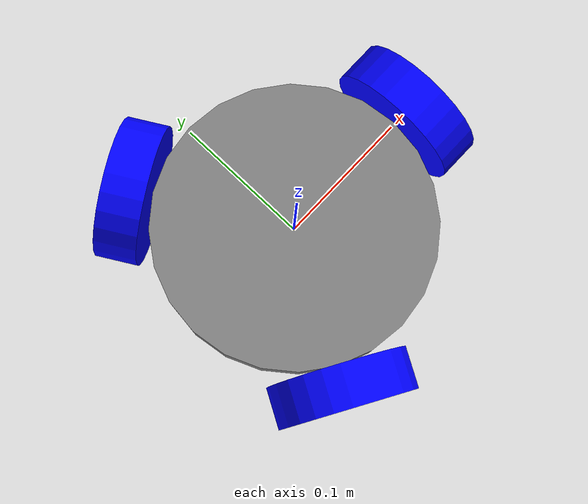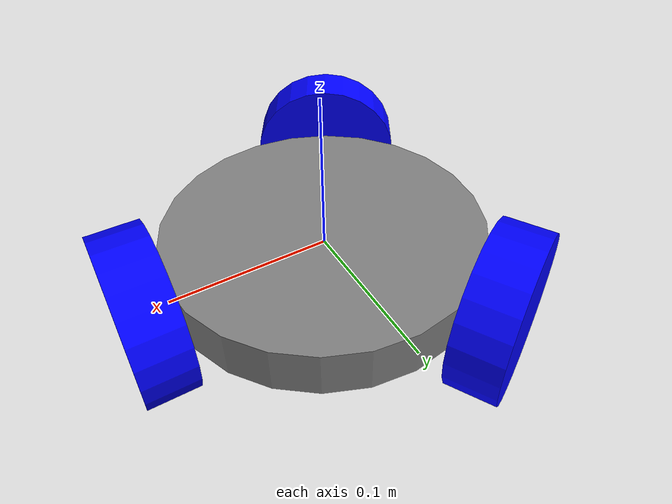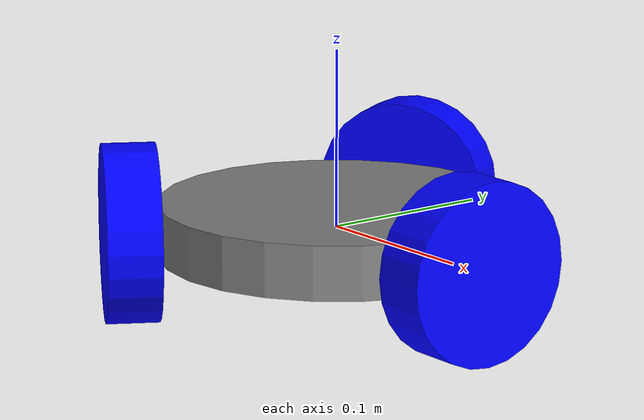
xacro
<?xml version="1.0"?>
<robot xmlns:xacro="http://www.ros.org/wiki/xacro">

        <xacro:include filename="inertial_macros.xacro"/>

        <material name="gray">
                <color rgba="0.5 0.5 0.5 1"/>
        </material>

        <material name="blue">
                <color rgba="0 0 1 1"/>
        </material>

        <xacro:property name="chassis_radius" value="0.1"/>
        <xacro:property name="chassis_length" value="0.03"/>
        <xacro:property name="chassis_mass" value="0.6"/>
        <xacro:property name="wheel_radius" value="0.05"/>
        <xacro:property name="wheel_length" value="0.03"/>
        <xacro:property name="wheel_mass" value="0.2"/>
        <xacro:property name="angle_wheel1" value="0"/>
        <xacro:property name="angle_wheel2" value="${120 * (pi/180)}"/> <!-- Convert degrees to radians -->
        <xacro:property name="angle_wheel3" value="${240 * (pi/180)}"/>
        <xacro:property name="x1" value="${chassis_radius * cos(angle_wheel1)}"/> <!-- Compute x and y positions -->
        <xacro:property name="y1" value="${chassis_radius * sin(angle_wheel1)}"/>
        <xacro:property name="x2" value="${chassis_radius * cos(angle_wheel2)}"/>
        <xacro:property name="y2" value="${chassis_radius * sin(angle_wheel2)}"/>
        <xacro:property name="x3" value="${chassis_radius * cos(angle_wheel3)}"/>
        <xacro:property name="y3" value="${chassis_radius * sin(angle_wheel3)}"/>

        <link name="base_link"></link>

        <!-- CHASSIS 1 LINK -->
        <joint name="base_joint" type="fixed">
                <parent link="base_link"/>
                <child link="chassis1_link"/>
                <origin xyz="0 0 0" rpy="0 0 0"/>
        </joint>

        <link name="chassis1_link">
                <visual>
                        <origin xyz="0 0 0" rpy="0 0 0"/>
                        <geometry>
                                <cylinder radius="${chassis_radius}" length="${chassis_length}"/>
                        </geometry>
                        <material name="gray"/>
                </visual>
                <collision>
                        <origin xyz="0 0 0" rpy="0 0 0"/>
                        <geometry>
                                <cylinder radius="${chassis_radius}" length="${chassis_length}"/>
                        </geometry>
                </collision>
                <xacro:inertial_cylinder mass="${chassis_mass}" length="${chassis_length}" radius="${chassis_radius}">
                        <origin xyz="0 0 0" rpy="0 0 0"/>
                </xacro:inertial_cylinder>
        </link>

        <!-- WHEEL 1 -->
        <joint name="wheel1_joint" type="continuous">
                <parent link="chassis1_link"/>
                <child link="wheel1_link"/>
                <origin xyz="${x1} ${y1} 0" rpy="0 ${pi/2} 0"/>
                <axis xyz="0 0 1"/>
        </joint>

        <link name="wheel1_link">
                <visual>
                        <origin xyz="0 0 ${wheel_length/2}" rpy="0 0 0"/>
                        <geometry>
                                <cylinder radius="${wheel_radius}" length="${wheel_length}" />
                        </geometry>
                        <material name="blue"/>
                </visual>
                <collision>
                        <origin xyz="0 0 ${wheel_length/2}" rpy="0 0 0"/>
                        <geometry>
                                <cylinder radius="${wheel_radius}" length="${wheel_length}" />
                        </geometry>
                </collision>
                <xacro:inertial_cylinder mass="${wheel_mass}" length="${wheel_length}" radius="${wheel_radius}">
                        <origin xyz="0 0 ${wheel_length/2}" rpy="0 0 0"/>
                </xacro:inertial_cylinder>
        </link>

        <!-- WHEEL 2 -->
        <joint name="wheel2_joint" type="continuous">
                <parent link="chassis1_link"/>
                <child link="wheel2_link"/>
                <origin xyz="${x2} ${y2} 0" rpy="-${angle_wheel2} ${pi/2} 0"/>
                <axis xyz="0 0 1"/>
        </joint>

        <link name="wheel2_link">
                <visual>
                        <origin xyz="0 0 ${wheel_length/2}" rpy="0 0 0"/>
                        <geometry>
                                <cylinder radius="${wheel_radius}" length="${wheel_length}" />
                        </geometry>
                        <material name="blue"/>
                </visual>
                <collision>
                        <origin xyz="0 0 ${wheel_length/2}" rpy="0 0 0"/>
                        <geometry>
                                <cylinder radius="${wheel_radius}" length="${wheel_length}" />
                        </geometry>
                </collision>
                <xacro:inertial_cylinder mass="${wheel_mass}" length="${wheel_length}" radius="${wheel_radius}">
                        <origin xyz="0 0 ${wheel_length/2}" rpy="0 0 0"/>
                </xacro:inertial_cylinder>
        </link>

        <!-- WHEEL 3 -->
        <joint name="wheel3_joint" type="continuous">
                <parent link="chassis1_link"/>
                <child link="wheel3_link"/>
                <origin xyz="${x3} ${y3} 0" rpy="-${angle_wheel3} ${pi/2} 0"/>
                <axis xyz="0 0 1"/>
        </joint>

        <link name="wheel3_link">
                <visual>
                        <origin xyz="0 0 ${wheel_length/2}" rpy="0 0 0"/>
                        <geometry>
                                <cylinder radius="${wheel_radius}" length="${wheel_length}" />
                        </geometry>
                        <material name="blue"/>
                </visual>
                <collision>
                        <origin xyz="0 0 ${wheel_length/2}" rpy="0 0 0"/>
                        <geometry>
                                <cylinder radius="${wheel_radius}" length="${wheel_length}" />
                        </geometry>
                </collision>
                <xacro:inertial_cylinder mass="${wheel_mass}" length="${wheel_length}" radius="${wheel_radius}">
                        <origin xyz="0 0 ${wheel_length/2}" rpy="0 0 0"/>
                </xacro:inertial_cylinder>
        </link>

</robot>
